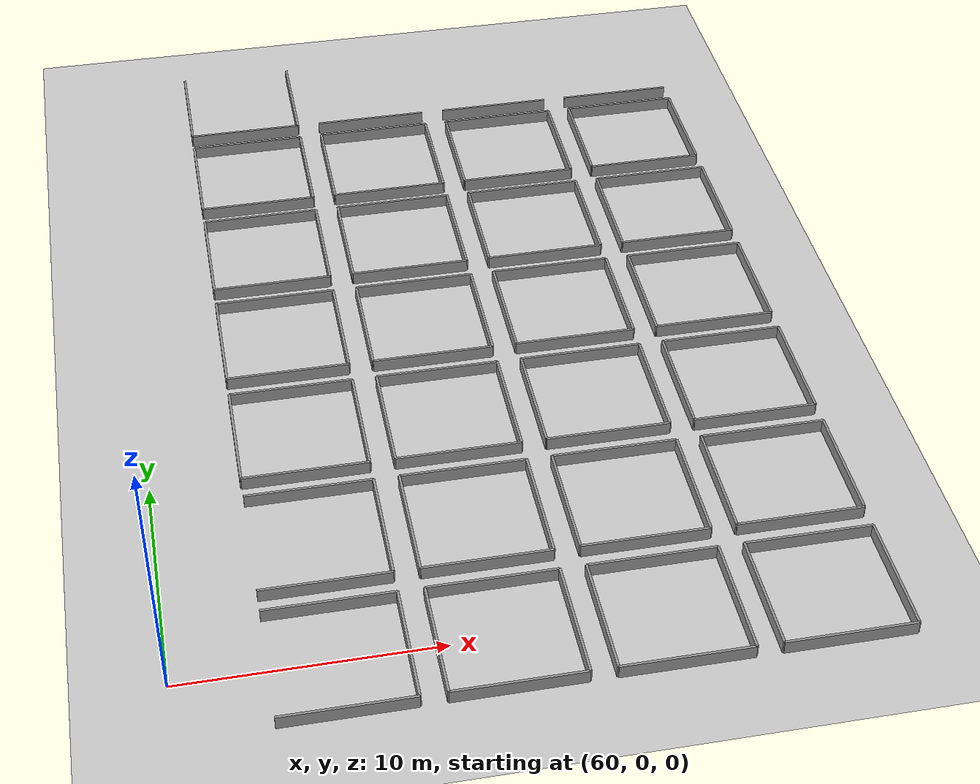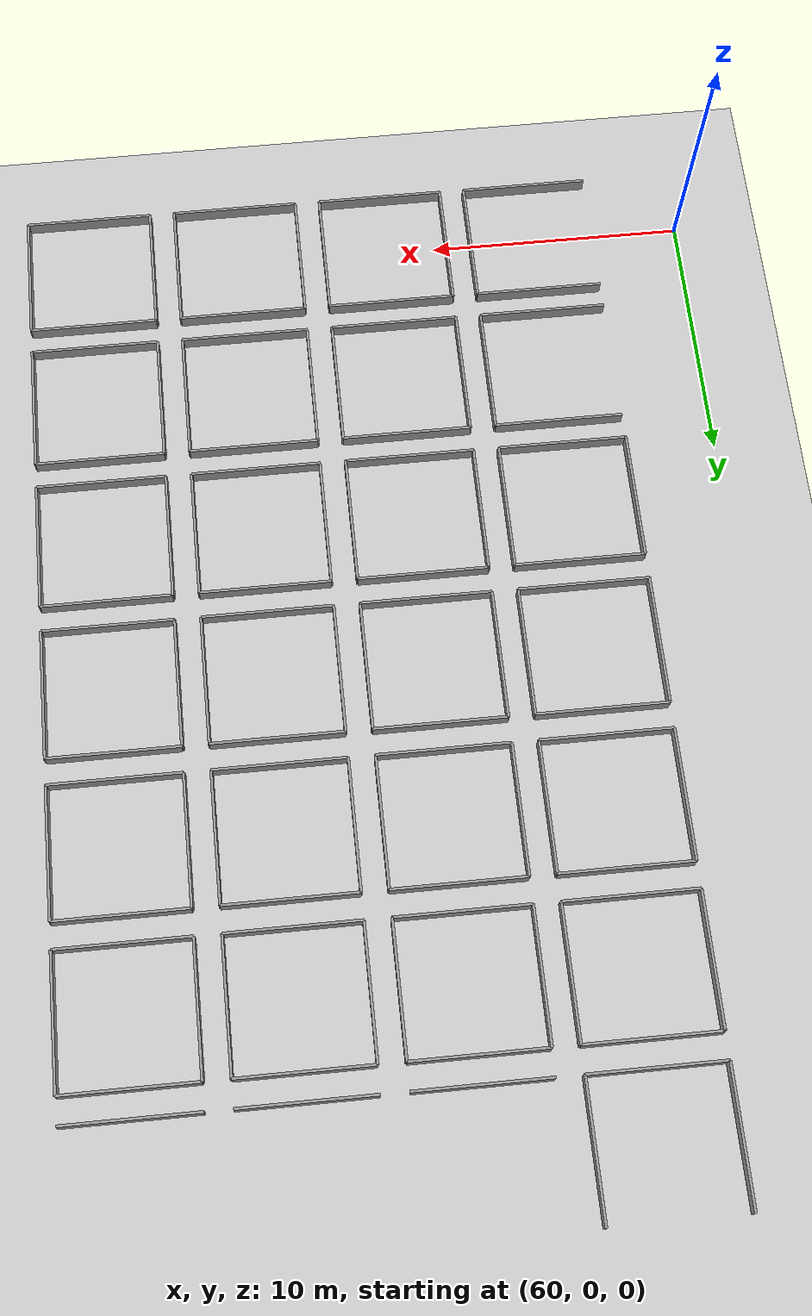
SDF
<sdf version="1.7">
 <world name="default">
  <include><uri>model://sun</uri></include>
  <model name="ground_plane">
   <static>true</static>
   <link name="link">
    <collision name="collision">
     <geometry><plane><normal>0 0 1</normal><size>100 100</size></plane></geometry>
    </collision>
    <visual name="visual">
     <geometry><plane><normal>0 0 1</normal><size>100 100</size></plane></geometry>
     <material>
      <script><uri>file://media/materials/scripts/gazebo.material</uri><name>Gazebo/Grey</name></script>
     </material>
    </visual>
   </link>
  </model>
  <model name="wall_11_north">
   <static>true</static>
   <pose>66 2.5 0 0 0 0</pose>
   <link name="link">
    <collision name="collision"><geometry><box><size>5 0.1 1</size></box></geometry></collision>
    <visual name="visual">
     <geometry><box><size>5 0.1 1</size></box></geometry>
     <material>
      <script><uri>file://media/materials/scripts/gazebo.material</uri><name>Gazebo/Grey</name></script>
     </material>
    </visual>
   </link>
  </model>
  <model name="wall_11_south">
   <static>true</static>
   <pose>66 -2.5 0 0 0 0</pose>
   <link name="link">
    <collision name="collision"><geometry><box><size>5 0.1 1</size></box></geometry></collision>
    <visual name="visual">
     <geometry><box><size>5 0.1 1</size></box></geometry>
     <material>
      <script><uri>file://media/materials/scripts/gazebo.material</uri><name>Gazebo/Grey</name></script>
     </material>
    </visual>
   </link>
  </model>
  <model name="wall_11_east">
   <static>true</static>
   <pose>68.5 0 0 0 0 1.5707</pose>
   <link name="link">
    <collision name="collision"><geometry><box><size>5 0.1 1</size></box></geometry></collision>
    <visual name="visual">
     <geometry><box><size>5 0.1 1</size></box></geometry>
     <material>
      <script><uri>file://media/materials/scripts/gazebo.material</uri><name>Gazebo/Grey</name></script>
     </material>
    </visual>
   </link>
  </model>
  <model name="wall_12_north">
   <static>true</static>
   <pose>72 2.5 0 0 0 0</pose>
   <link name="link">
    <collision name="collision"><geometry><box><size>5 0.1 1</size></box></geometry></collision>
    <visual name="visual">
     <geometry><box><size>5 0.1 1</size></box></geometry>
     <material>
      <script><uri>file://media/materials/scripts/gazebo.material</uri><name>Gazebo/Grey</name></script>
     </material>
    </visual>
   </link>
  </model>
  <model name="wall_12_south">
   <static>true</static>
   <pose>72 -2.5 0 0 0 0</pose>
   <link name="link">
    <collision name="collision"><geometry><box><size>5 0.1 1</size></box></geometry></collision>
    <visual name="visual">
     <geometry><box><size>5 0.1 1</size></box></geometry>
     <material>
      <script><uri>file://media/materials/scripts/gazebo.material</uri><name>Gazebo/Grey</name></script>
     </material>
    </visual>
   </link>
  </model>
  <model name="wall_12_east">
   <static>true</static>
   <pose>74.5 0 0 0 0 1.5707</pose>
   <link name="link">
    <collision name="collision"><geometry><box><size>5 0.1 1</size></box></geometry></collision>
    <visual name="visual">
     <geometry><box><size>5 0.1 1</size></box></geometry>
     <material>
      <script><uri>file://media/materials/scripts/gazebo.material</uri><name>Gazebo/Grey</name></script>
     </material>
    </visual>
   </link>
  </model>
  <model name="wall_12_west">
   <static>true</static>
   <pose>69.5 0 0 0 0 1.5707</pose>
   <link name="link">
    <collision name="collision"><geometry><box><size>5 0.1 1</size></box></geometry></collision>
    <visual name="visual">
     <geometry><box><size>5 0.1 1</size></box></geometry>
     <material>
      <script><uri>file://media/materials/scripts/gazebo.material</uri><name>Gazebo/Grey</name></script>
     </material>
    </visual>
   </link>
  </model>
  <model name="wall_13_north">
   <static>true</static>
   <pose>78 2.5 0 0 0 0</pose>
   <link name="link">
    <collision name="collision"><geometry><box><size>5 0.1 1</size></box></geometry></collision>
    <visual name="visual">
     <geometry><box><size>5 0.1 1</size></box></geometry>
     <material>
      <script><uri>file://media/materials/scripts/gazebo.material</uri><name>Gazebo/Grey</name></script>
     </material>
    </visual>
   </link>
  </model>
  <model name="wall_13_south">
   <static>true</static>
   <pose>78 -2.5 0 0 0 0</pose>
   <link name="link">
    <collision name="collision"><geometry><box><size>5 0.1 1</size></box></geometry></collision>
    <visual name="visual">
     <geometry><box><size>5 0.1 1</size></box></geometry>
     <material>
      <script><uri>file://media/materials/scripts/gazebo.material</uri><name>Gazebo/Grey</name></script>
     </material>
    </visual>
   </link>
  </model>
  <model name="wall_13_east">
   <static>true</static>
   <pose>80.5 0 0 0 0 1.5707</pose>
   <link name="link">
    <collision name="collision"><geometry><box><size>5 0.1 1</size></box></geometry></collision>
    <visual name="visual">
     <geometry><box><size>5 0.1 1</size></box></geometry>
     <material>
      <script><uri>file://media/materials/scripts/gazebo.material</uri><name>Gazebo/Grey</name></script>
     </material>
    </visual>
   </link>
  </model>
  <model name="wall_13_west">
   <static>true</static>
   <pose>75.5 0 0 0 0 1.5707</pose>
   <link name="link">
    <collision name="collision"><geometry><box><size>5 0.1 1</size></box></geometry></collision>
    <visual name="visual">
     <geometry><box><size>5 0.1 1</size></box></geometry>
     <material>
      <script><uri>file://media/materials/scripts/gazebo.material</uri><name>Gazebo/Grey</name></script>
     </material>
    </visual>
   </link>
  </model>
  <model name="wall_14_north">
   <static>true</static>
   <pose>84 2.5 0 0 0 0</pose>
   <link name="link">
    <collision name="collision"><geometry><box><size>5 0.1 1</size></box></geometry></collision>
    <visual name="visual">
     <geometry><box><size>5 0.1 1</size></box></geometry>
     <material>
      <script><uri>file://media/materials/scripts/gazebo.material</uri><name>Gazebo/Grey</name></script>
     </material>
    </visual>
   </link>
  </model>
  <model name="wall_14_south">
   <static>true</static>
   <pose>84 -2.5 0 0 0 0</pose>
   <link name="link">
    <collision name="collision"><geometry><box><size>5 0.1 1</size></box></geometry></collision>
    <visual name="visual">
     <geometry><box><size>5 0.1 1</size></box></geometry>
     <material>
      <script><uri>file://media/materials/scripts/gazebo.material</uri><name>Gazebo/Grey</name></script>
     </material>
    </visual>
   </link>
  </model>
  <model name="wall_14_east">
   <static>true</static>
   <pose>86.5 0 0 0 0 1.5707</pose>
   <link name="link">
    <collision name="collision"><geometry><box><size>5 0.1 1</size></box></geometry></collision>
    <visual name="visual">
     <geometry><box><size>5 0.1 1</size></box></geometry>
     <material>
      <script><uri>file://media/materials/scripts/gazebo.material</uri><name>Gazebo/Grey</name></script>
     </material>
    </visual>
   </link>
  </model>
  <model name="wall_14_west">
   <static>true</static>
   <pose>81.5 0 0 0 0 1.5707</pose>
   <link name="link">
    <collision name="collision"><geometry><box><size>5 0.1 1</size></box></geometry></collision>
    <visual name="visual">
     <geometry><box><size>5 0.1 1</size></box></geometry>
     <material>
      <script><uri>file://media/materials/scripts/gazebo.material</uri><name>Gazebo/Grey</name></script>
     </material>
    </visual>
   </link>
  </model>
  <model name="wall_26_north">
   <static>true</static>
   <pose>66 8.5 0 0 0 0</pose>
   <link name="link">
    <collision name="collision"><geometry><box><size>5 0.1 1</size></box></geometry></collision>
    <visual name="visual">
     <geometry><box><size>5 0.1 1</size></box></geometry>
     <material>
      <script><uri>file://media/materials/scripts/gazebo.material</uri><name>Gazebo/Grey</name></script>
     </material>
    </visual>
   </link>
  </model>
  <model name="wall_26_south">
   <static>true</static>
   <pose>66 3.5 0 0 0 0</pose>
   <link name="link">
    <collision name="collision"><geometry><box><size>5 0.1 1</size></box></geometry></collision>
    <visual name="visual">
     <geometry><box><size>5 0.1 1</size></box></geometry>
     <material>
      <script><uri>file://media/materials/scripts/gazebo.material</uri><name>Gazebo/Grey</name></script>
     </material>
    </visual>
   </link>
  </model>
  <model name="wall_26_east">
   <static>true</static>
   <pose>68.5 6 0 0 0 1.5707</pose>
   <link name="link">
    <collision name="collision"><geometry><box><size>5 0.1 1</size></box></geometry></collision>
    <visual name="visual">
     <geometry><box><size>5 0.1 1</size></box></geometry>
     <material>
      <script><uri>file://media/materials/scripts/gazebo.material</uri><name>Gazebo/Grey</name></script>
     </material>
    </visual>
   </link>
  </model>
  <model name="wall_27_north">
   <static>true</static>
   <pose>72 8.5 0 0 0 0</pose>
   <link name="link">
    <collision name="collision"><geometry><box><size>5 0.1 1</size></box></geometry></collision>
    <visual name="visual">
     <geometry><box><size>5 0.1 1</size></box></geometry>
     <material>
      <script><uri>file://media/materials/scripts/gazebo.material</uri><name>Gazebo/Grey</name></script>
     </material>
    </visual>
   </link>
  </model>
  <model name="wall_27_south">
   <static>true</static>
   <pose>72 3.5 0 0 0 0</pose>
   <link name="link">
    <collision name="collision"><geometry><box><size>5 0.1 1</size></box></geometry></collision>
    <visual name="visual">
     <geometry><box><size>5 0.1 1</size></box></geometry>
     <material>
      <script><uri>file://media/materials/scripts/gazebo.material</uri><name>Gazebo/Grey</name></script>
     </material>
    </visual>
   </link>
  </model>
  <model name="wall_27_east">
   <static>true</static>
   <pose>74.5 6 0 0 0 1.5707</pose>
   <link name="link">
    <collision name="collision"><geometry><box><size>5 0.1 1</size></box></geometry></collision>
    <visual name="visual">
     <geometry><box><size>5 0.1 1</size></box></geometry>
     <material>
      <script><uri>file://media/materials/scripts/gazebo.material</uri><name>Gazebo/Grey</name></script>
     </material>
    </visual>
   </link>
  </model>
  <model name="wall_27_west">
   <static>true</static>
   <pose>69.5 6 0 0 0 1.5707</pose>
   <link name="link">
    <collision name="collision"><geometry><box><size>5 0.1 1</size></box></geometry></collision>
    <visual name="visual">
     <geometry><box><size>5 0.1 1</size></box></geometry>
     <material>
      <script><uri>file://media/materials/scripts/gazebo.material</uri><name>Gazebo/Grey</name></script>
     </material>
    </visual>
   </link>
  </model>
  <model name="wall_28_north">
   <static>true</static>
   <pose>78 8.5 0 0 0 0</pose>
   <link name="link">
    <collision name="collision"><geometry><box><size>5 0.1 1</size></box></geometry></collision>
    <visual name="visual">
     <geometry><box><size>5 0.1 1</size></box></geometry>
     <material>
      <script><uri>file://media/materials/scripts/gazebo.material</uri><name>Gazebo/Grey</name></script>
     </material>
    </visual>
   </link>
  </model>
  <model name="wall_28_south">
   <static>true</static>
   <pose>78 3.5 0 0 0 0</pose>
   <link name="link">
    <collision name="collision"><geometry><box><size>5 0.1 1</size></box></geometry></collision>
    <visual name="visual">
     <geometry><box><size>5 0.1 1</size></box></geometry>
     <material>
      <script><uri>file://media/materials/scripts/gazebo.material</uri><name>Gazebo/Grey</name></script>
     </material>
    </visual>
   </link>
  </model>
  <model name="wall_28_east">
   <static>true</static>
   <pose>80.5 6 0 0 0 1.5707</pose>
   <link name="link">
    <collision name="collision"><geometry><box><size>5 0.1 1</size></box></geometry></collision>
    <visual name="visual">
     <geometry><box><size>5 0.1 1</size></box></geometry>
     <material>
      <script><uri>file://media/materials/scripts/gazebo.material</uri><name>Gazebo/Grey</name></script>
     </material>
    </visual>
   </link>
  </model>
  <model name="wall_28_west">
   <static>true</static>
   <pose>75.5 6 0 0 0 1.5707</pose>
   <link name="link">
    <collision name="collision"><geometry><box><size>5 0.1 1</size></box></geometry></collision>
    <visual name="visual">
     <geometry><box><size>5 0.1 1</size></box></geometry>
     <material>
      <script><uri>file://media/materials/scripts/gazebo.material</uri><name>Gazebo/Grey</name></script>
     </material>
    </visual>
   </link>
  </model>
  <model name="wall_29_north">
   <static>true</static>
   <pose>84 8.5 0 0 0 0</pose>
   <link name="link">
    <collision name="collision"><geometry><box><size>5 0.1 1</size></box></geometry></collision>
    <visual name="visual">
     <geometry><box><size>5 0.1 1</size></box></geometry>
     <material>
      <script><uri>file://media/materials/scripts/gazebo.material</uri><name>Gazebo/Grey</name></script>
     </material>
    </visual>
   </link>
  </model>
  <model name="wall_29_south">
   <static>true</static>
   <pose>84 3.5 0 0 0 0</pose>
   <link name="link">
    <collision name="collision"><geometry><box><size>5 0.1 1</size></box></geometry></collision>
    <visual name="visual">
     <geometry><box><size>5 0.1 1</size></box></geometry>
     <material>
      <script><uri>file://media/materials/scripts/gazebo.material</uri><name>Gazebo/Grey</name></script>
     </material>
    </visual>
   </link>
  </model>
  <model name="wall_29_east">
   <static>true</static>
   <pose>86.5 6 0 0 0 1.5707</pose>
   <link name="link">
    <collision name="collision"><geometry><box><size>5 0.1 1</size></box></geometry></collision>
    <visual name="visual">
     <geometry><box><size>5 0.1 1</size></box></geometry>
     <material>
      <script><uri>file://media/materials/scripts/gazebo.material</uri><name>Gazebo/Grey</name></script>
     </material>
    </visual>
   </link>
  </model>
  <model name="wall_29_west">
   <static>true</static>
   <pose>81.5 6 0 0 0 1.5707</pose>
   <link name="link">
    <collision name="collision"><geometry><box><size>5 0.1 1</size></box></geometry></collision>
    <visual name="visual">
     <geometry><box><size>5 0.1 1</size></box></geometry>
     <material>
      <script><uri>file://media/materials/scripts/gazebo.material</uri><name>Gazebo/Grey</name></script>
     </material>
    </visual>
   </link>
  </model>
  <model name="wall_41_north">
   <static>true</static>
   <pose>66 14.5 0 0 0 0</pose>
   <link name="link">
    <collision name="collision"><geometry><box><size>5 0.1 1</size></box></geometry></collision>
    <visual name="visual">
     <geometry><box><size>5 0.1 1</size></box></geometry>
     <material>
      <script><uri>file://media/materials/scripts/gazebo.material</uri><name>Gazebo/Grey</name></script>
     </material>
    </visual>
   </link>
  </model>
  <model name="wall_41_south">
   <static>true</static>
   <pose>66 9.5 0 0 0 0</pose>
   <link name="link">
    <collision name="collision"><geometry><box><size>5 0.1 1</size></box></geometry></collision>
    <visual name="visual">
     <geometry><box><size>5 0.1 1</size></box></geometry>
     <material>
      <script><uri>file://media/materials/scripts/gazebo.material</uri><name>Gazebo/Grey</name></script>
     </material>
    </visual>
   </link>
  </model>
  <model name="wall_41_east">
   <static>true</static>
   <pose>68.5 12 0 0 0 1.5707</pose>
   <link name="link">
    <collision name="collision"><geometry><box><size>5 0.1 1</size></box></geometry></collision>
    <visual name="visual">
     <geometry><box><size>5 0.1 1</size></box></geometry>
     <material>
      <script><uri>file://media/materials/scripts/gazebo.material</uri><name>Gazebo/Grey</name></script>
     </material>
    </visual>
   </link>
  </model>
  <model name="wall_41_west">
   <static>true</static>
   <pose>63.5 12 0 0 0 1.5707</pose>
   <link name="link">
    <collision name="collision"><geometry><box><size>5 0.1 1</size></box></geometry></collision>
    <visual name="visual">
     <geometry><box><size>5 0.1 1</size></box></geometry>
     <material>
      <script><uri>file://media/materials/scripts/gazebo.material</uri><name>Gazebo/Grey</name></script>
     </material>
    </visual>
   </link>
  </model>
  <model name="wall_42_north">
   <static>true</static>
   <pose>72 14.5 0 0 0 0</pose>
   <link name="link">
    <collision name="collision"><geometry><box><size>5 0.1 1</size></box></geometry></collision>
    <visual name="visual">
     <geometry><box><size>5 0.1 1</size></box></geometry>
     <material>
      <script><uri>file://media/materials/scripts/gazebo.material</uri><name>Gazebo/Grey</name></script>
     </material>
    </visual>
   </link>
  </model>
  <model name="wall_42_south">
   <static>true</static>
   <pose>72 9.5 0 0 0 0</pose>
   <link name="link">
    <collision name="collision"><geometry><box><size>5 0.1 1</size></box></geometry></collision>
    <visual name="visual">
     <geometry><box><size>5 0.1 1</size></box></geometry>
     <material>
      <script><uri>file://media/materials/scripts/gazebo.material</uri><name>Gazebo/Grey</name></script>
     </material>
    </visual>
   </link>
  </model>
  <model name="wall_42_east">
   <static>true</static>
   <pose>74.5 12 0 0 0 1.5707</pose>
   <link name="link">
    <collision name="collision"><geometry><box><size>5 0.1 1</size></box></geometry></collision>
    <visual name="visual">
     <geometry><box><size>5 0.1 1</size></box></geometry>
     <material>
      <script><uri>file://media/materials/scripts/gazebo.material</uri><name>Gazebo/Grey</name></script>
     </material>
    </visual>
   </link>
  </model>
  <model name="wall_42_west">
   <static>true</static>
   <pose>69.5 12 0 0 0 1.5707</pose>
   <link name="link">
    <collision name="collision"><geometry><box><size>5 0.1 1</size></box></geometry></collision>
    <visual name="visual">
     <geometry><box><size>5 0.1 1</size></box></geometry>
     <material>
      <script><uri>file://media/materials/scripts/gazebo.material</uri><name>Gazebo/Grey</name></script>
     </material>
    </visual>
   </link>
  </model>
  <model name="wall_43_north">
   <static>true</static>
   <pose>78 14.5 0 0 0 0</pose>
   <link name="link">
    <collision name="collision"><geometry><box><size>5 0.1 1</size></box></geometry></collision>
    <visual name="visual">
     <geometry><box><size>5 0.1 1</size></box></geometry>
     <material>
      <script><uri>file://media/materials/scripts/gazebo.material</uri><name>Gazebo/Grey</name></script>
     </material>
    </visual>
   </link>
  </model>
  <model name="wall_43_south">
   <static>true</static>
   <pose>78 9.5 0 0 0 0</pose>
   <link name="link">
    <collision name="collision"><geometry><box><size>5 0.1 1</size></box></geometry></collision>
    <visual name="visual">
     <geometry><box><size>5 0.1 1</size></box></geometry>
     <material>
      <script><uri>file://media/materials/scripts/gazebo.material</uri><name>Gazebo/Grey</name></script>
     </material>
    </visual>
   </link>
  </model>
  <model name="wall_43_east">
   <static>true</static>
   <pose>80.5 12 0 0 0 1.5707</pose>
   <link name="link">
    <collision name="collision"><geometry><box><size>5 0.1 1</size></box></geometry></collision>
    <visual name="visual">
     <geometry><box><size>5 0.1 1</size></box></geometry>
     <material>
      <script><uri>file://media/materials/scripts/gazebo.material</uri><name>Gazebo/Grey</name></script>
     </material>
    </visual>
   </link>
  </model>
  <model name="wall_43_west">
   <static>true</static>
   <pose>75.5 12 0 0 0 1.5707</pose>
   <link name="link">
    <collision name="collision"><geometry><box><size>5 0.1 1</size></box></geometry></collision>
    <visual name="visual">
     <geometry><box><size>5 0.1 1</size></box></geometry>
     <material>
      <script><uri>file://media/materials/scripts/gazebo.material</uri><name>Gazebo/Grey</name></script>
     </material>
    </visual>
   </link>
  </model>
  <model name="wall_44_north">
   <static>true</static>
   <pose>84 14.5 0 0 0 0</pose>
   <link name="link">
    <collision name="collision"><geometry><box><size>5 0.1 1</size></box></geometry></collision>
    <visual name="visual">
     <geometry><box><size>5 0.1 1</size></box></geometry>
     <material>
      <script><uri>file://media/materials/scripts/gazebo.material</uri><name>Gazebo/Grey</name></script>
     </material>
    </visual>
   </link>
  </model>
  <model name="wall_44_south">
   <static>true</static>
   <pose>84 9.5 0 0 0 0</pose>
   <link name="link">
    <collision name="collision"><geometry><box><size>5 0.1 1</size></box></geometry></collision>
    <visual name="visual">
     <geometry><box><size>5 0.1 1</size></box></geometry>
     <material>
      <script><uri>file://media/materials/scripts/gazebo.material</uri><name>Gazebo/Grey</name></script>
     </material>
    </visual>
   </link>
  </model>
  <model name="wall_44_east">
   <static>true</static>
   <pose>86.5 12 0 0 0 1.5707</pose>
   <link name="link">
    <collision name="collision"><geometry><box><size>5 0.1 1</size></box></geometry></collision>
    <visual name="visual">
     <geometry><box><size>5 0.1 1</size></box></geometry>
     <material>
      <script><uri>file://media/materials/scripts/gazebo.material</uri><name>Gazebo/Grey</name></script>
     </material>
    </visual>
   </link>
  </model>
  <model name="wall_44_west">
   <static>true</static>
   <pose>81.5 12 0 0 0 1.5707</pose>
   <link name="link">
    <collision name="collision"><geometry><box><size>5 0.1 1</size></box></geometry></collision>
    <visual name="visual">
     <geometry><box><size>5 0.1 1</size></box></geometry>
     <material>
      <script><uri>file://media/materials/scripts/gazebo.material</uri><name>Gazebo/Grey</name></script>
     </material>
    </visual>
   </link>
  </model>
  <model name="wall_56_north">
   <static>true</static>
   <pose>66 20.5 0 0 0 0</pose>
   <link name="link">
    <collision name="collision"><geometry><box><size>5 0.1 1</size></box></geometry></collision>
    <visual name="visual">
     <geometry><box><size>5 0.1 1</size></box></geometry>
     <material>
      <script><uri>file://media/materials/scripts/gazebo.material</uri><name>Gazebo/Grey</name></script>
     </material>
    </visual>
   </link>
  </model>
  <model name="wall_56_south">
   <static>true</static>
   <pose>66 15.5 0 0 0 0</pose>
   <link name="link">
    <collision name="collision"><geometry><box><size>5 0.1 1</size></box></geometry></collision>
    <visual name="visual">
     <geometry><box><size>5 0.1 1</size></box></geometry>
     <material>
      <script><uri>file://media/materials/scripts/gazebo.material</uri><name>Gazebo/Grey</name></script>
     </material>
    </visual>
   </link>
  </model>
  <model name="wall_56_east">
   <static>true</static>
   <pose>68.5 18 0 0 0 1.5707</pose>
   <link name="link">
    <collision name="collision"><geometry><box><size>5 0.1 1</size></box></geometry></collision>
    <visual name="visual">
     <geometry><box><size>5 0.1 1</size></box></geometry>
     <material>
      <script><uri>file://media/materials/scripts/gazebo.material</uri><name>Gazebo/Grey</name></script>
     </material>
    </visual>
   </link>
  </model>
  <model name="wall_56_west">
   <static>true</static>
   <pose>63.5 18 0 0 0 1.5707</pose>
   <link name="link">
    <collision name="collision"><geometry><box><size>5 0.1 1</size></box></geometry></collision>
    <visual name="visual">
     <geometry><box><size>5 0.1 1</size></box></geometry>
     <material>
      <script><uri>file://media/materials/scripts/gazebo.material</uri><name>Gazebo/Grey</name></script>
     </material>
    </visual>
   </link>
  </model>
  <model name="wall_57_north">
   <static>true</static>
   <pose>72 20.5 0 0 0 0</pose>
   <link name="link">
    <collision name="collision"><geometry><box><size>5 0.1 1</size></box></geometry></collision>
    <visual name="visual">
     <geometry><box><size>5 0.1 1</size></box></geometry>
     <material>
      <script><uri>file://media/materials/scripts/gazebo.material</uri><name>Gazebo/Grey</name></script>
     </material>
    </visual>
   </link>
  </model>
  <model name="wall_57_south">
   <static>true</static>
   <pose>72 15.5 0 0 0 0</pose>
   <link name="link">
    <collision name="collision"><geometry><box><size>5 0.1 1</size></box></geometry></collision>
    <visual name="visual">
     <geometry><box><size>5 0.1 1</size></box></geometry>
     <material>
      <script><uri>file://media/materials/scripts/gazebo.material</uri><name>Gazebo/Grey</name></script>
     </material>
    </visual>
   </link>
  </model>
  <model name="wall_57_east">
   <static>true</static>
   <pose>74.5 18 0 0 0 1.5707</pose>
   <link name="link">
    <collision name="collision"><geometry><box><size>5 0.1 1</size></box></geometry></collision>
    <visual name="visual">
     <geometry><box><size>5 0.1 1</size></box></geometry>
     <material>
      <script><uri>file://media/materials/scripts/gazebo.material</uri><name>Gazebo/Grey</name></script>
     </material>
    </visual>
   </link>
  </model>
  <model name="wall_57_west">
   <static>true</static>
   <pose>69.5 18 0 0 0 1.5707</pose>
   <link name="link">
    <collision name="collision"><geometry><box><size>5 0.1 1</size></box></geometry></collision>
    <visual name="visual">
     <geometry><box><size>5 0.1 1</size></box></geometry>
     <material>
      <script><uri>file://media/materials/scripts/gazebo.material</uri><name>Gazebo/Grey</name></script>
     </material>
    </visual>
   </link>
  </model>
  <model name="wall_58_north">
   <static>true</static>
   <pose>78 20.5 0 0 0 0</pose>
   <link name="link">
    <collision name="collision"><geometry><box><size>5 0.1 1</size></box></geometry></collision>
    <visual name="visual">
     <geometry><box><size>5 0.1 1</size></box></geometry>
     <material>
      <script><uri>file://media/materials/scripts/gazebo.material</uri><name>Gazebo/Grey</name></script>
     </material>
    </visual>
   </link>
  </model>
  <model name="wall_58_south">
   <static>true</static>
   <pose>78 15.5 0 0 0 0</pose>
   <link name="link">
    <collision name="collision"><geometry><box><size>5 0.1 1</size></box></geometry></collision>
    <visual name="visual">
     <geometry><box><size>5 0.1 1</size></box></geometry>
     <material>
      <script><uri>file://media/materials/scripts/gazebo.material</uri><name>Gazebo/Grey</name></script>
     </material>
    </visual>
   </link>
  </model>
  <model name="wall_58_east">
   <static>true</static>
   <pose>80.5 18 0 0 0 1.5707</pose>
   <link name="link">
    <collision name="collision"><geometry><box><size>5 0.1 1</size></box></geometry></collision>
    <visual name="visual">
     <geometry><box><size>5 0.1 1</size></box></geometry>
     <material>
      <script><uri>file://media/materials/scripts/gazebo.material</uri><name>Gazebo/Grey</name></script>
     </material>
    </visual>
   </link>
  </model>
  <model name="wall_58_west">
   <static>true</static>
   <pose>75.5 18 0 0 0 1.5707</pose>
   <link name="link">
    <collision name="collision"><geometry><box><size>5 0.1 1</size></box></geometry></collision>
    <visual name="visual">
     <geometry><box><size>5 0.1 1</size></box></geometry>
     <material>
      <script><uri>file://media/materials/scripts/gazebo.material</uri><name>Gazebo/Grey</name></script>
     </material>
    </visual>
   </link>
  </model>
  <model name="wall_59_north">
   <static>true</static>
   <pose>84 20.5 0 0 0 0</pose>
   <link name="link">
    <collision name="collision"><geometry><box><size>5 0.1 1</size></box></geometry></collision>
    <visual name="visual">
     <geometry><box><size>5 0.1 1</size></box></geometry>
     <material>
      <script><uri>file://media/materials/scripts/gazebo.material</uri><name>Gazebo/Grey</name></script>
     </material>
    </visual>
   </link>
  </model>
  <model name="wall_59_south">
   <static>true</static>
   <pose>84 15.5 0 0 0 0</pose>
   <link name="link">
    <collision name="collision"><geometry><box><size>5 0.1 1</size></box></geometry></collision>
    <visual name="visual">
     <geometry><box><size>5 0.1 1</size></box></geometry>
     <material>
      <script><uri>file://media/materials/scripts/gazebo.material</uri><name>Gazebo/Grey</name></script>
     </material>
    </visual>
   </link>
  </model>
  <model name="wall_59_east">
   <static>true</static>
   <pose>86.5 18 0 0 0 1.5707</pose>
   <link name="link">
    <collision name="collision"><geometry><box><size>5 0.1 1</size></box></geometry></collision>
    <visual name="visual">
     <geometry><box><size>5 0.1 1</size></box></geometry>
     <material>
      <script><uri>file://media/materials/scripts/gazebo.material</uri><name>Gazebo/Grey</name></script>
     </material>
    </visual>
   </link>
  </model>
  <model name="wall_59_west">
   <static>true</static>
   <pose>81.5 18 0 0 0 1.5707</pose>
   <link name="link">
    <collision name="collision"><geometry><box><size>5 0.1 1</size></box></geometry></collision>
    <visual name="visual">
     <geometry><box><size>5 0.1 1</size></box></geometry>
     <material>
      <script><uri>file://media/materials/scripts/gazebo.material</uri><name>Gazebo/Grey</name></script>
     </material>
    </visual>
   </link>
  </model>
  <model name="wall_71_north">
   <static>true</static>
   <pose>66 26.5 0 0 0 0</pose>
   <link name="link">
    <collision name="collision"><geometry><box><size>5 0.1 1</size></box></geometry></collision>
    <visual name="visual">
     <geometry><box><size>5 0.1 1</size></box></geometry>
     <material>
      <script><uri>file://media/materials/scripts/gazebo.material</uri><name>Gazebo/Grey</name></script>
     </material>
    </visual>
   </link>
  </model>
  <model name="wall_71_south">
   <static>true</static>
   <pose>66 21.5 0 0 0 0</pose>
   <link name="link">
    <collision name="collision"><geometry><box><size>5 0.1 1</size></box></geometry></collision>
    <visual name="visual">
     <geometry><box><size>5 0.1 1</size></box></geometry>
     <material>
      <script><uri>file://media/materials/scripts/gazebo.material</uri><name>Gazebo/Grey</name></script>
     </material>
    </visual>
   </link>
  </model>
  <model name="wall_71_east">
   <static>true</static>
   <pose>68.5 24 0 0 0 1.5707</pose>
   <link name="link">
    <collision name="collision"><geometry><box><size>5 0.1 1</size></box></geometry></collision>
    <visual name="visual">
     <geometry><box><size>5 0.1 1</size></box></geometry>
     <material>
      <script><uri>file://media/materials/scripts/gazebo.material</uri><name>Gazebo/Grey</name></script>
     </material>
    </visual>
   </link>
  </model>
  <model name="wall_71_west">
   <static>true</static>
   <pose>63.5 24 0 0 0 1.5707</pose>
   <link name="link">
    <collision name="collision"><geometry><box><size>5 0.1 1</size></box></geometry></collision>
    <visual name="visual">
     <geometry><box><size>5 0.1 1</size></box></geometry>
     <material>
      <script><uri>file://media/materials/scripts/gazebo.material</uri><name>Gazebo/Grey</name></script>
     </material>
    </visual>
   </link>
  </model>
  <model name="wall_72_north">
   <static>true</static>
   <pose>72 26.5 0 0 0 0</pose>
   <link name="link">
    <collision name="collision"><geometry><box><size>5 0.1 1</size></box></geometry></collision>
    <visual name="visual">
     <geometry><box><size>5 0.1 1</size></box></geometry>
     <material>
      <script><uri>file://media/materials/scripts/gazebo.material</uri><name>Gazebo/Grey</name></script>
     </material>
    </visual>
   </link>
  </model>
  <model name="wall_72_south">
   <static>true</static>
   <pose>72 21.5 0 0 0 0</pose>
   <link name="link">
    <collision name="collision"><geometry><box><size>5 0.1 1</size></box></geometry></collision>
    <visual name="visual">
     <geometry><box><size>5 0.1 1</size></box></geometry>
     <material>
      <script><uri>file://media/materials/scripts/gazebo.material</uri><name>Gazebo/Grey</name></script>
     </material>
    </visual>
   </link>
  </model>
  <model name="wall_72_east">
   <static>true</static>
   <pose>74.5 24 0 0 0 1.5707</pose>
   <link name="link">
    <collision name="collision"><geometry><box><size>5 0.1 1</size></box></geometry></collision>
    <visual name="visual">
     <geometry><box><size>5 0.1 1</size></box></geometry>
     <material>
      <script><uri>file://media/materials/scripts/gazebo.material</uri><name>Gazebo/Grey</name></script>
     </material>
    </visual>
   </link>
  </model>
  <model name="wall_72_west">
   <static>true</static>
   <pose>69.5 24 0 0 0 1.5707</pose>
   <link name="link">
    <collision name="collision"><geometry><box><size>5 0.1 1</size></box></geometry></collision>
    <visual name="visual">
     <geometry><box><size>5 0.1 1</size></box></geometry>
     <material>
      <script><uri>file://media/materials/scripts/gazebo.material</uri><name>Gazebo/Grey</name></script>
     </material>
    </visual>
   </link>
  </model>
  <model name="wall_73_north">
   <static>true</static>
   <pose>78 26.5 0 0 0 0</pose>
   <link name="link">
    <collision name="collision"><geometry><box><size>5 0.1 1</size></box></geometry></collision>
    <visual name="visual">
     <geometry><box><size>5 0.1 1</size></box></geometry>
     <material>
      <script><uri>file://media/materials/scripts/gazebo.material</uri><name>Gazebo/Grey</name></script>
     </material>
    </visual>
   </link>
  </model>
  <model name="wall_73_south">
   <static>true</static>
   <pose>78 21.5 0 0 0 0</pose>
   <link name="link">
    <collision name="collision"><geometry><box><size>5 0.1 1</size></box></geometry></collision>
    <visual name="visual">
     <geometry><box><size>5 0.1 1</size></box></geometry>
     <material>
      <script><uri>file://media/materials/scripts/gazebo.material</uri><name>Gazebo/Grey</name></script>
     </material>
    </visual>
   </link>
  </model>
  <model name="wall_73_east">
   <static>true</static>
   <pose>80.5 24 0 0 0 1.5707</pose>
   <link name="link">
    <collision name="collision"><geometry><box><size>5 0.1 1</size></box></geometry></collision>
    <visual name="visual">
     <geometry><box><size>5 0.1 1</size></box></geometry>
     <material>
      <script><uri>file://media/materials/scripts/gazebo.material</uri><name>Gazebo/Grey</name></script>
     </material>
    </visual>
   </link>
  </model>
  <model name="wall_73_west">
   <static>true</static>
   <pose>75.5 24 0 0 0 1.5707</pose>
   <link name="link">
    <collision name="collision"><geometry><box><size>5 0.1 1</size></box></geometry></collision>
    <visual name="visual">
     <geometry><box><size>5 0.1 1</size></box></geometry>
     <material>
      <script><uri>file://media/materials/scripts/gazebo.material</uri><name>Gazebo/Grey</name></script>
     </material>
    </visual>
   </link>
  </model>
  <model name="wall_74_north">
   <static>true</static>
   <pose>84 26.5 0 0 0 0</pose>
   <link name="link">
    <collision name="collision"><geometry><box><size>5 0.1 1</size></box></geometry></collision>
    <visual name="visual">
     <geometry><box><size>5 0.1 1</size></box></geometry>
     <material>
      <script><uri>file://media/materials/scripts/gazebo.material</uri><name>Gazebo/Grey</name></script>
     </material>
    </visual>
   </link>
  </model>
  <model name="wall_74_south">
   <static>true</static>
   <pose>84 21.5 0 0 0 0</pose>
   <link name="link">
    <collision name="collision"><geometry><box><size>5 0.1 1</size></box></geometry></collision>
    <visual name="visual">
     <geometry><box><size>5 0.1 1</size></box></geometry>
     <material>
      <script><uri>file://media/materials/scripts/gazebo.material</uri><name>Gazebo/Grey</name></script>
     </material>
    </visual>
   </link>
  </model>
  <model name="wall_74_east">
   <static>true</static>
   <pose>86.5 24 0 0 0 1.5707</pose>
   <link name="link">
    <collision name="collision"><geometry><box><size>5 0.1 1</size></box></geometry></collision>
    <visual name="visual">
     <geometry><box><size>5 0.1 1</size></box></geometry>
     <material>
      <script><uri>file://media/materials/scripts/gazebo.material</uri><name>Gazebo/Grey</name></script>
     </material>
    </visual>
   </link>
  </model>
  <model name="wall_74_west">
   <static>true</static>
   <pose>81.5 24 0 0 0 1.5707</pose>
   <link name="link">
    <collision name="collision"><geometry><box><size>5 0.1 1</size></box></geometry></collision>
    <visual name="visual">
     <geometry><box><size>5 0.1 1</size></box></geometry>
     <material>
      <script><uri>file://media/materials/scripts/gazebo.material</uri><name>Gazebo/Grey</name></script>
     </material>
    </visual>
   </link>
  </model>
  <model name="wall_86_north">
   <static>true</static>
   <pose>66 32.5 0 0 0 0</pose>
   <link name="link">
    <collision name="collision"><geometry><box><size>5 0.1 1</size></box></geometry></collision>
    <visual name="visual">
     <geometry><box><size>5 0.1 1</size></box></geometry>
     <material>
      <script><uri>file://media/materials/scripts/gazebo.material</uri><name>Gazebo/Grey</name></script>
     </material>
    </visual>
   </link>
  </model>
  <model name="wall_86_south">
   <static>true</static>
   <pose>66 27.5 0 0 0 0</pose>
   <link name="link">
    <collision name="collision"><geometry><box><size>5 0.1 1</size></box></geometry></collision>
    <visual name="visual">
     <geometry><box><size>5 0.1 1</size></box></geometry>
     <material>
      <script><uri>file://media/materials/scripts/gazebo.material</uri><name>Gazebo/Grey</name></script>
     </material>
    </visual>
   </link>
  </model>
  <model name="wall_86_east">
   <static>true</static>
   <pose>68.5 30 0 0 0 1.5707</pose>
   <link name="link">
    <collision name="collision"><geometry><box><size>5 0.1 1</size></box></geometry></collision>
    <visual name="visual">
     <geometry><box><size>5 0.1 1</size></box></geometry>
     <material>
      <script><uri>file://media/materials/scripts/gazebo.material</uri><name>Gazebo/Grey</name></script>
     </material>
    </visual>
   </link>
  </model>
  <model name="wall_86_west">
   <static>true</static>
   <pose>63.5 30 0 0 0 1.5707</pose>
   <link name="link">
    <collision name="collision"><geometry><box><size>5 0.1 1</size></box></geometry></collision>
    <visual name="visual">
     <geometry><box><size>5 0.1 1</size></box></geometry>
     <material>
      <script><uri>file://media/materials/scripts/gazebo.material</uri><name>Gazebo/Grey</name></script>
     </material>
    </visual>
   </link>
  </model>
  <model name="wall_87_north">
   <static>true</static>
   <pose>72 32.5 0 0 0 0</pose>
   <link name="link">
    <collision name="collision"><geometry><box><size>5 0.1 1</size></box></geometry></collision>
    <visual name="visual">
     <geometry><box><size>5 0.1 1</size></box></geometry>
     <material>
      <script><uri>file://media/materials/scripts/gazebo.material</uri><name>Gazebo/Grey</name></script>
     </material>
    </visual>
   </link>
  </model>
  <model name="wall_87_south">
   <static>true</static>
   <pose>72 27.5 0 0 0 0</pose>
   <link name="link">
    <collision name="collision"><geometry><box><size>5 0.1 1</size></box></geometry></collision>
    <visual name="visual">
     <geometry><box><size>5 0.1 1</size></box></geometry>
     <material>
      <script><uri>file://media/materials/scripts/gazebo.material</uri><name>Gazebo/Grey</name></script>
     </material>
    </visual>
   </link>
  </model>
  <model name="wall_87_east">
   <static>true</static>
   <pose>74.5 30 0 0 0 1.5707</pose>
   <link name="link">
    <collision name="collision"><geometry><box><size>5 0.1 1</size></box></geometry></collision>
    <visual name="visual">
     <geometry><box><size>5 0.1 1</size></box></geometry>
     <material>
      <script><uri>file://media/materials/scripts/gazebo.material</uri><name>Gazebo/Grey</name></script>
     </material>
    </visual>
   </link>
  </model>
  <model name="wall_87_west">
   <static>true</static>
   <pose>69.5 30 0 0 0 1.5707</pose>
   <link name="link">
    <collision name="collision"><geometry><box><size>5 0.1 1</size></box></geometry></collision>
    <visual name="visual">
     <geometry><box><size>5 0.1 1</size></box></geometry>
     <material>
      <script><uri>file://media/materials/scripts/gazebo.material</uri><name>Gazebo/Grey</name></script>
     </material>
    </visual>
   </link>
  </model>
  <model name="wall_88_north">
   <static>true</static>
   <pose>78 32.5 0 0 0 0</pose>
   <link name="link">
    <collision name="collision"><geometry><box><size>5 0.1 1</size></box></geometry></collision>
    <visual name="visual">
     <geometry><box><size>5 0.1 1</size></box></geometry>
     <material>
      <script><uri>file://media/materials/scripts/gazebo.material</uri><name>Gazebo/Grey</name></script>
     </material>
    </visual>
   </link>
  </model>
  <model name="wall_88_south">
   <static>true</static>
   <pose>78 27.5 0 0 0 0</pose>
   <link name="link">
    <collision name="collision"><geometry><box><size>5 0.1 1</size></box></geometry></collision>
    <visual name="visual">
     <geometry><box><size>5 0.1 1</size></box></geometry>
     <material>
      <script><uri>file://media/materials/scripts/gazebo.material</uri><name>Gazebo/Grey</name></script>
     </material>
    </visual>
   </link>
  </model>
  <model name="wall_88_east">
   <static>true</static>
   <pose>80.5 30 0 0 0 1.5707</pose>
   <link name="link">
    <collision name="collision"><geometry><box><size>5 0.1 1</size></box></geometry></collision>
    <visual name="visual">
     <geometry><box><size>5 0.1 1</size></box></geometry>
     <material>
      <script><uri>file://media/materials/scripts/gazebo.material</uri><name>Gazebo/Grey</name></script>
     </material>
    </visual>
   </link>
  </model>
  <model name="wall_88_west">
   <static>true</static>
   <pose>75.5 30 0 0 0 1.5707</pose>
   <link name="link">
    <collision name="collision"><geometry><box><size>5 0.1 1</size></box></geometry></collision>
    <visual name="visual">
     <geometry><box><size>5 0.1 1</size></box></geometry>
     <material>
      <script><uri>file://media/materials/scripts/gazebo.material</uri><name>Gazebo/Grey</name></script>
     </material>
    </visual>
   </link>
  </model>
  <model name="wall_89_north">
   <static>true</static>
   <pose>84 32.5 0 0 0 0</pose>
   <link name="link">
    <collision name="collision"><geometry><box><size>5 0.1 1</size></box></geometry></collision>
    <visual name="visual">
     <geometry><box><size>5 0.1 1</size></box></geometry>
     <material>
      <script><uri>file://media/materials/scripts/gazebo.material</uri><name>Gazebo/Grey</name></script>
     </material>
    </visual>
   </link>
  </model>
  <model name="wall_89_south">
   <static>true</static>
   <pose>84 27.5 0 0 0 0</pose>
   <link name="link">
    <collision name="collision"><geometry><box><size>5 0.1 1</size></box></geometry></collision>
    <visual name="visual">
     <geometry><box><size>5 0.1 1</size></box></geometry>
     <material>
      <script><uri>file://media/materials/scripts/gazebo.material</uri><name>Gazebo/Grey</name></script>
     </material>
    </visual>
   </link>
  </model>
  <model name="wall_89_east">
   <static>true</static>
   <pose>86.5 30 0 0 0 1.5707</pose>
   <link name="link">
    <collision name="collision"><geometry><box><size>5 0.1 1</size></box></geometry></collision>
    <visual name="visual">
     <geometry><box><size>5 0.1 1</size></box></geometry>
     <material>
      <script><uri>file://media/materials/scripts/gazebo.material</uri><name>Gazebo/Grey</name></script>
     </material>
    </visual>
   </link>
  </model>
  <model name="wall_89_west">
   <static>true</static>
   <pose>81.5 30 0 0 0 1.5707</pose>
   <link name="link">
    <collision name="collision"><geometry><box><size>5 0.1 1</size></box></geometry></collision>
    <visual name="visual">
     <geometry><box><size>5 0.1 1</size></box></geometry>
     <material>
      <script><uri>file://media/materials/scripts/gazebo.material</uri><name>Gazebo/Grey</name></script>
     </material>
    </visual>
   </link>
  </model>
  <model name="wall_101_south">
   <static>true</static>
   <pose>66 33.5 0 0 0 0</pose>
   <link name="link">
    <collision name="collision"><geometry><box><size>5 0.1 1</size></box></geometry></collision>
    <visual name="visual">
     <geometry><box><size>5 0.1 1</size></box></geometry>
     <material>
      <script><uri>file://media/materials/scripts/gazebo.material</uri><name>Gazebo/Grey</name></script>
     </material>
    </visual>
   </link>
  </model>
  <model name="wall_101_east">
   <static>true</static>
   <pose>68.5 36 0 0 0 1.5707</pose>
   <link name="link">
    <collision name="collision"><geometry><box><size>5 0.1 1</size></box></geometry></collision>
    <visual name="visual">
     <geometry><box><size>5 0.1 1</size></box></geometry>
     <material>
      <script><uri>file://media/materials/scripts/gazebo.material</uri><name>Gazebo/Grey</name></script>
     </material>
    </visual>
   </link>
  </model>
  <model name="wall_101_west">
   <static>true</static>
   <pose>63.5 36 0 0 0 1.5707</pose>
   <link name="link">
    <collision name="collision"><geometry><box><size>5 0.1 1</size></box></geometry></collision>
    <visual name="visual">
     <geometry><box><size>5 0.1 1</size></box></geometry>
     <material>
      <script><uri>file://media/materials/scripts/gazebo.material</uri><name>Gazebo/Grey</name></script>
     </material>
    </visual>
   </link>
  </model>
  <model name="wall_102_south">
   <static>true</static>
   <pose>72 33.5 0 0 0 0</pose>
   <link name="link">
    <collision name="collision"><geometry><box><size>5 0.1 1</size></box></geometry></collision>
    <visual name="visual">
     <geometry><box><size>5 0.1 1</size></box></geometry>
     <material>
      <script><uri>file://media/materials/scripts/gazebo.material</uri><name>Gazebo/Grey</name></script>
     </material>
    </visual>
   </link>
  </model>
  <model name="wall_103_south">
   <static>true</static>
   <pose>78 33.5 0 0 0 0</pose>
   <link name="link">
    <collision name="collision"><geometry><box><size>5 0.1 1</size></box></geometry></collision>
    <visual name="visual">
     <geometry><box><size>5 0.1 1</size></box></geometry>
     <material>
      <script><uri>file://media/materials/scripts/gazebo.material</uri><name>Gazebo/Grey</name></script>
     </material>
    </visual>
   </link>
  </model>
  <model name="wall_104_south">
   <static>true</static>
   <pose>84 33.5 0 0 0 0</pose>
   <link name="link">
    <collision name="collision"><geometry><box><size>5 0.1 1</size></box></geometry></collision>
    <visual name="visual">
     <geometry><box><size>5 0.1 1</size></box></geometry>
     <material>
      <script><uri>file://media/materials/scripts/gazebo.material</uri><name>Gazebo/Grey</name></script>
     </material>
    </visual>
   </link>
  </model>
 </world>
</sdf>
